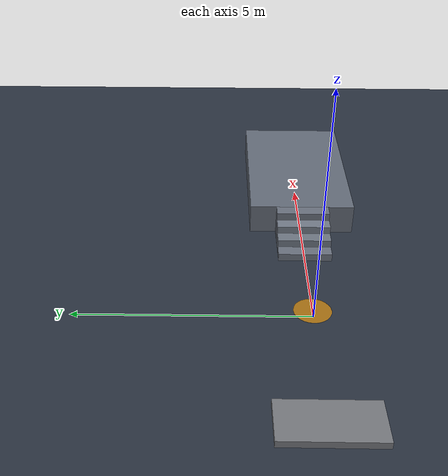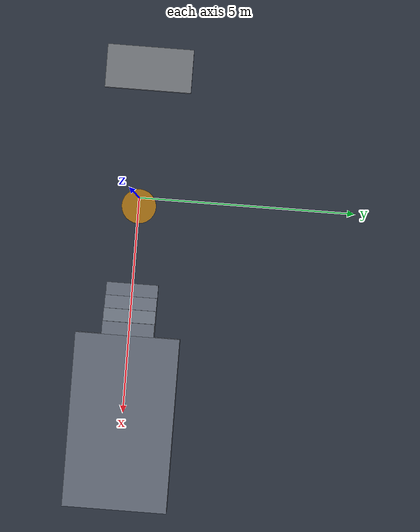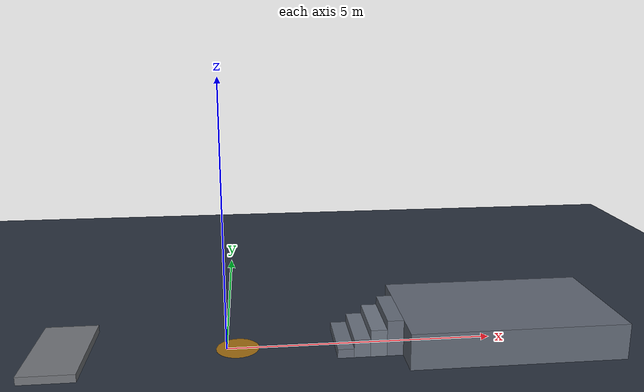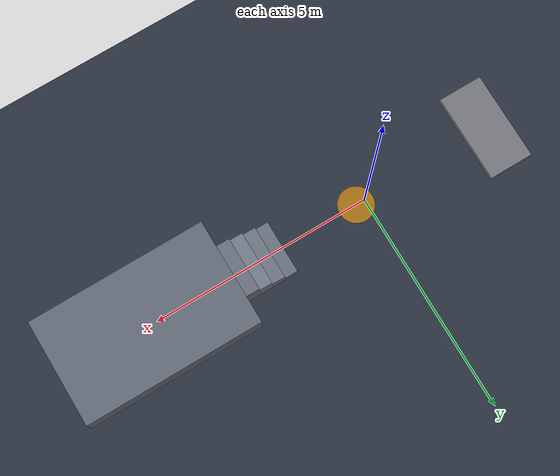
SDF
<?xml version="1.0"?>
<!--
  ARQUIVO GERADO - nao editar a mao.
  Fonte:   00_Especificacao_Mestre/parametros_mestres.yaml
  Gerador: ferramentas/gerar_mundo_gazebo.py
-->
<sdf version="1.9">
  <world name="escada_molhada">

    <physics name="dart" type="dart">
      <max_step_size>0.0005</max_step_size>
      <real_time_factor>1.0</real_time_factor>
    </physics>

    <plugin filename="gz-sim-physics-system" name="gz::sim::systems::Physics"/>
    <plugin filename="gz-sim-user-commands-system" name="gz::sim::systems::UserCommands"/>
    <plugin filename="gz-sim-scene-broadcaster-system" name="gz::sim::systems::SceneBroadcaster"/>
    <plugin filename="gz-sim-sensors-system" name="gz::sim::systems::Sensors">
      <render_engine>ogre2</render_engine>
    </plugin>
    <plugin filename="gz-sim-imu-system" name="gz::sim::systems::Imu"/>
    <plugin filename="gz-sim-contact-system" name="gz::sim::systems::Contact"/>

    <gravity>0 0 -9.80665</gravity>
    <scene>
      <ambient>0.5 0.5 0.55 1</ambient>
      <background>0.06 0.08 0.12 1</background>
      <grid>false</grid>
      <shadows>true</shadows>
    </scene>

    <light type="directional" name="sol">
      <pose>0 0 12 0 0 0</pose>
      <diffuse>1.0 0.97 0.92 1</diffuse>
      <specular>0.25 0.25 0.25 1</specular>
      <direction>-0.4 0.3 -0.9</direction>
      <cast_shadows>true</cast_shadows>
    </light>

    <model name="piso">
      <static>true</static>
      <link name="link">
        <collision name="colisao">
          <geometry><plane><normal>0 0 1</normal><size>200 200</size></plane></geometry>
          <surface>
            <friction><ode><mu>0.55</mu><mu2>0.55</mu2></ode></friction>
          </surface>
        </collision>
        <visual name="visual">
          <geometry><plane><normal>0 0 1</normal><size>200 200</size></plane></geometry>
          <material>
            <ambient>0.16 0.19 0.24 1</ambient><diffuse>0.16 0.19 0.24 1</diffuse>
          </material>
        </visual>
      </link>
    </model>

    <model name="ensaio_00">
      <static>true</static>
      <pose>2.1500 0.0000 0.0850 0 0 0</pose>
      <link name="link">
        <collision name="colisao">
          <geometry><box><size>0.3000 1.2000 0.1700</size></box></geometry>
          <surface>
            <friction><ode><mu>0.55</mu><mu2>0.55</mu2></ode></friction>
            <contact><ode><kp>1e7</kp><kd>1e3</kd></ode></contact>
          </surface>
        </collision>
        <visual name="visual">
          <geometry><box><size>0.3000 1.2000 0.1700</size></box></geometry>
          <material>
            <ambient>0.4 0.43000000000000005 0.48000000000000004 1</ambient>
            <diffuse>0.4 0.43000000000000005 0.48000000000000004 1</diffuse>
          </material>
        </visual>
      </link>
    </model>
    <model name="ensaio_01">
      <static>true</static>
      <pose>2.4500 0.0000 0.1700 0 0 0</pose>
      <link name="link">
        <collision name="colisao">
          <geometry><box><size>0.3000 1.2000 0.3400</size></box></geometry>
          <surface>
            <friction><ode><mu>0.55</mu><mu2>0.55</mu2></ode></friction>
            <contact><ode><kp>1e7</kp><kd>1e3</kd></ode></contact>
          </surface>
        </collision>
        <visual name="visual">
          <geometry><box><size>0.3000 1.2000 0.3400</size></box></geometry>
          <material>
            <ambient>0.42000000000000004 0.45000000000000007 0.5 1</ambient>
            <diffuse>0.42000000000000004 0.45000000000000007 0.5 1</diffuse>
          </material>
        </visual>
      </link>
    </model>
    <model name="ensaio_02">
      <static>true</static>
      <pose>2.7500 0.0000 0.2550 0 0 0</pose>
      <link name="link">
        <collision name="colisao">
          <geometry><box><size>0.3000 1.2000 0.5100</size></box></geometry>
          <surface>
            <friction><ode><mu>0.55</mu><mu2>0.55</mu2></ode></friction>
            <contact><ode><kp>1e7</kp><kd>1e3</kd></ode></contact>
          </surface>
        </collision>
        <visual name="visual">
          <geometry><box><size>0.3000 1.2000 0.5100</size></box></geometry>
          <material>
            <ambient>0.44 0.47 0.52 1</ambient>
            <diffuse>0.44 0.47 0.52 1</diffuse>
          </material>
        </visual>
      </link>
    </model>
    <model name="ensaio_03">
      <static>true</static>
      <pose>3.0500 0.0000 0.3400 0 0 0</pose>
      <link name="link">
        <collision name="colisao">
          <geometry><box><size>0.3000 1.2000 0.6800</size></box></geometry>
          <surface>
            <friction><ode><mu>0.55</mu><mu2>0.55</mu2></ode></friction>
            <contact><ode><kp>1e7</kp><kd>1e3</kd></ode></contact>
          </surface>
        </collision>
        <visual name="visual">
          <geometry><box><size>0.3000 1.2000 0.6800</size></box></geometry>
          <material>
            <ambient>0.4 0.43000000000000005 0.48000000000000004 1</ambient>
            <diffuse>0.4 0.43000000000000005 0.48000000000000004 1</diffuse>
          </material>
        </visual>
      </link>
    </model>
    <model name="ensaio_patamar">
      <static>true</static>
      <pose>5.2000 0.0000 0.3400 0 0 0</pose>
      <link name="link">
        <collision name="colisao">
          <geometry><box><size>4.0000 2.4000 0.6800</size></box></geometry>
          <surface>
            <friction><ode><mu>0.55</mu><mu2>0.55</mu2></ode></friction>
            <contact><ode><kp>1e7</kp><kd>1e3</kd></ode></contact>
          </surface>
        </collision>
        <visual name="visual">
          <geometry><box><size>4.0000 2.4000 0.6800</size></box></geometry>
          <material>
            <ambient>0.38 0.41 0.46 1</ambient>
            <diffuse>0.38 0.41 0.46 1</diffuse>
          </material>
        </visual>
      </link>
    </model>
    <model name="meio_fio_ensaio">
      <static>true</static>
      <pose>-3.0000 0.0000 0.0750 0 0 0</pose>
      <link name="link">
        <collision name="colisao">
          <geometry><box><size>1.0000 2.0000 0.1500</size></box></geometry>
          <surface>
            <friction><ode><mu>0.55</mu><mu2>0.55</mu2></ode></friction>
            <contact><ode><kp>1e7</kp><kd>1e3</kd></ode></contact>
          </surface>
        </collision>
        <visual name="visual">
          <geometry><box><size>1.0000 2.0000 0.1500</size></box></geometry>
          <material>
            <ambient>0.45 0.46 0.48 1</ambient>
            <diffuse>0.45 0.46 0.48 1</diffuse>
          </material>
        </visual>
      </link>
    </model>
    <model name="largada">
      <static>true</static>
      <pose>0.200 0.000 0.005 0 0 0</pose>
      <link name="link">
        <visual name="visual">
          <geometry><cylinder><radius>0.40</radius><length>0.004</length></cylinder></geometry>
          <material>
            <ambient>1.0 0.63 0.0 0.6</ambient><diffuse>1.0 0.63 0.0 0.6</diffuse>
            <emissive>1.0 0.63 0.0 0.4</emissive>
          </material>
        </visual>
      </link>
    </model>
  </world>
</sdf>
